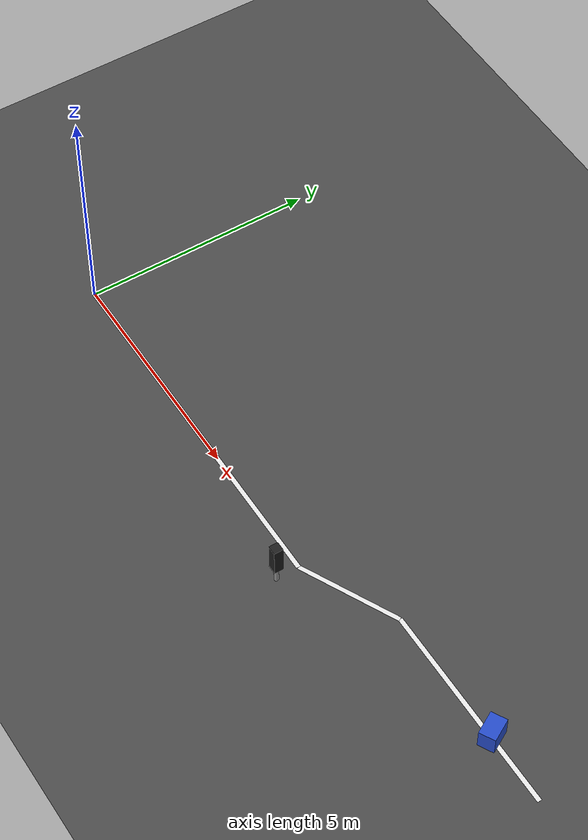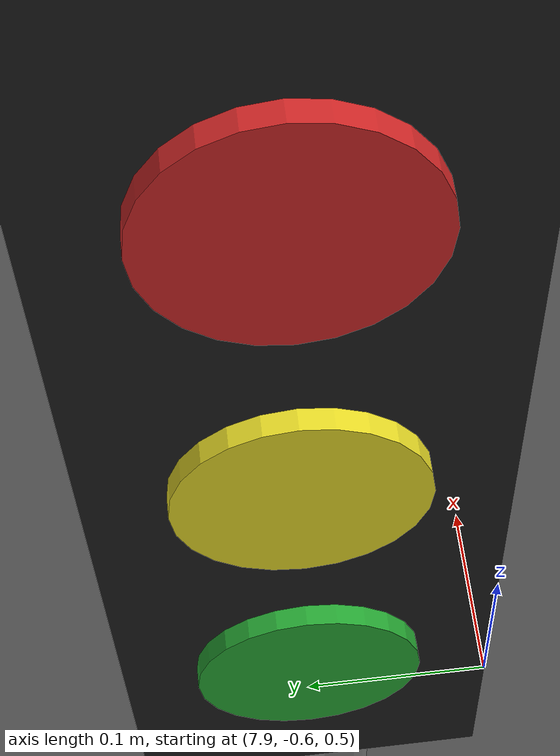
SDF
<sdf version="1.6">
 <world name="dusk_scene">
  <light type="directional" name="sun">
   <pose>0 0 10 0 0 0</pose>
   <diffuse>0.75 0.50 0.30 1</diffuse>
   <specular>0.15 0.10 0.05 1</specular>
   <attenuation>
    <range>1000</range>
    <constant>0.9</constant>
    <linear>0.01</linear>
    <quadratic>0.001</quadratic>
   </attenuation>
   <direction>-0.8 0.0 -0.4</direction>
  </light>
  <model name="ground_plane">
   <static>true</static>
   <link name="link">
    <collision name="collision">
     <geometry><plane><normal>0 0 1</normal><size>100 100</size></plane></geometry>
     <surface><friction><ode><mu>100</mu><mu2>50</mu2></ode></friction></surface>
    </collision>
    <visual name="visual">
     <cast_shadows>false</cast_shadows>
     <geometry><plane><normal>0 0 1</normal><size>100 100</size></plane></geometry>
     <material>
      <script><uri>file://media/materials/scripts/gazebo.material</uri><name>Gazebo/DarkGrey</name></script>
     </material>
    </visual>
   </link>
  </model>
  <model name="lane_segment_1">
   <static>true</static>
   <link name="link">
    <visual name="visual">
     <geometry><box><size>8.0 0.10 0.001</size></box></geometry>
     <material>
      <script><uri>file://media/materials/scripts/gazebo.material</uri><name>Gazebo/White</name></script>
     </material>
    </visual>
   </link>
   <pose>4.0 0.0 0.0005 0 0 0</pose>
  </model>
  <model name="lane_segment_2">
   <static>true</static>
   <link name="link">
    <visual name="visual">
     <geometry><box><size>2.24 0.10 0.001</size></box></geometry>
     <material>
      <script><uri>file://media/materials/scripts/gazebo.material</uri><name>Gazebo/White</name></script>
     </material>
    </visual>
   </link>
   <pose>9.0 0.5 0.0005 0 0 0.46</pose>
  </model>
  <model name="lane_segment_3">
   <static>true</static>
   <link name="link">
    <visual name="visual">
     <geometry><box><size>4.5 0.10 0.001</size></box></geometry>
     <material>
      <script><uri>file://media/materials/scripts/gazebo.material</uri><name>Gazebo/White</name></script>
     </material>
    </visual>
   </link>
   <pose>12.25 1.0 0.0005 0 0 0</pose>
  </model>
  <model name="traffic_light">
   <static>true</static>
   <link name="pole">
    <collision name="collision">
     <geometry><cylinder><radius>0.05</radius><length>0.4</length></cylinder></geometry>
    </collision>
    <visual name="visual">
     <geometry><cylinder><radius>0.05</radius><length>0.4</length></cylinder></geometry>
     <material>
      <script><uri>file://media/materials/scripts/gazebo.material</uri><name>Gazebo/Grey</name></script>
     </material>
    </visual>
    <pose>0 0 0.2 0 0 0</pose>
   </link>
   <link name="head">
    <collision name="collision"><geometry><box><size>0.20 0.20 0.65</size></box></geometry></collision>
    <visual name="visual">
     <geometry><box><size>0.20 0.20 0.65</size></box></geometry>
     <material>
      <script><uri>file://media/materials/scripts/gazebo.material</uri><name>Gazebo/Black</name></script>
     </material>
    </visual>
    <pose>0 0 0.725 0 0 0</pose>
   </link>
   <link name="red_light">
    <visual name="visual">
     <geometry><cylinder><radius>0.06</radius><length>0.02</length></cylinder></geometry>
     <material>
      <script><uri>file://media/materials/scripts/gazebo.material</uri><name>Gazebo/RedGlow</name></script>
     </material>
    </visual>
    <pose>0 0.101 0.90 1.5708 0 0</pose>
   </link>
   <link name="yellow_light">
    <visual name="visual">
     <geometry><cylinder><radius>0.06</radius><length>0.02</length></cylinder></geometry>
     <material>
      <script><uri>file://media/materials/scripts/gazebo.material</uri><name>Gazebo/YellowGlow</name></script>
     </material>
    </visual>
    <pose>0 0.101 0.72 1.5708 0 0</pose>
   </link>
   <link name="green_light">
    <visual name="visual">
     <geometry><cylinder><radius>0.06</radius><length>0.02</length></cylinder></geometry>
     <material>
      <script><uri>file://media/materials/scripts/gazebo.material</uri><name>Gazebo/GreenGlow</name></script>
     </material>
    </visual>
    <pose>0 0.101 0.54 1.5708 0 0</pose>
   </link>
   <pose>8.0 -0.5 0.0 0 0 1.5708</pose>
  </model>
  <model name="obstacle_box">
   <static>true</static>
   <link name="link">
    <collision name="collision"><geometry><box><size>0.35 0.50 0.45</size></box></geometry></collision>
    <visual name="visual">
     <geometry><box><size>0.35 0.50 0.45</size></box></geometry>
     <material>
      <script><uri>file://media/materials/scripts/gazebo.material</uri><name>Gazebo/Blue</name></script>
     </material>
    </visual>
   </link>
   <pose>13.0 1.0 0.225 0 0 0.5</pose>
  </model>
 </world>
</sdf>
